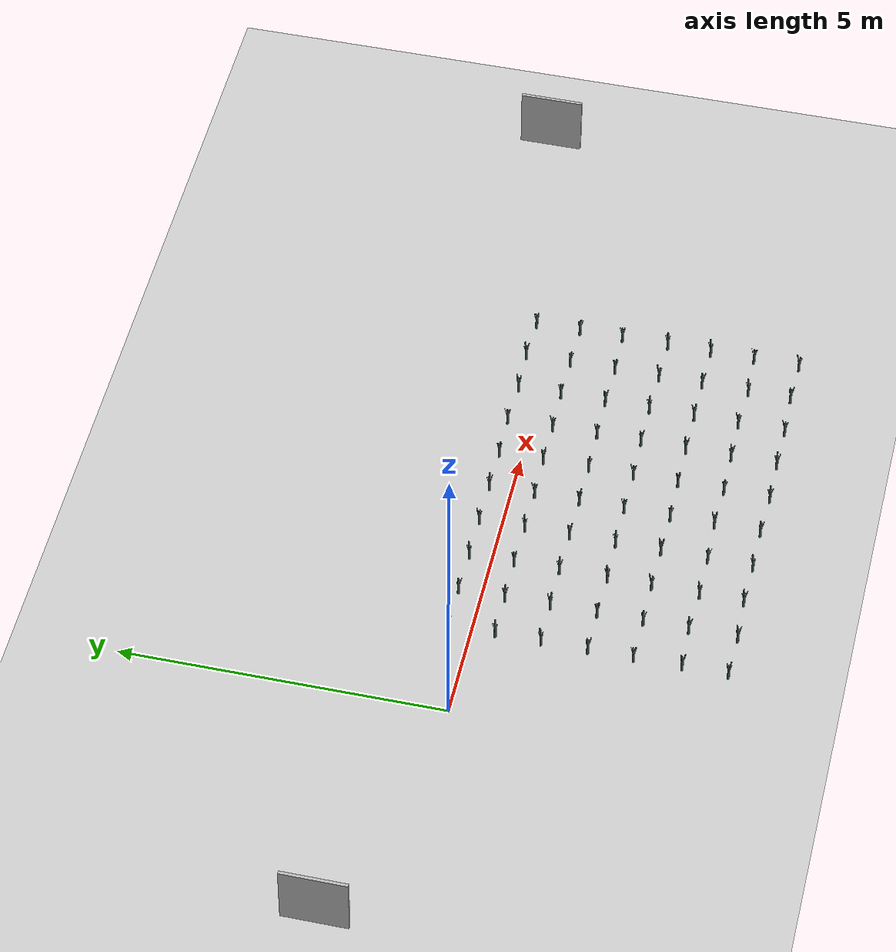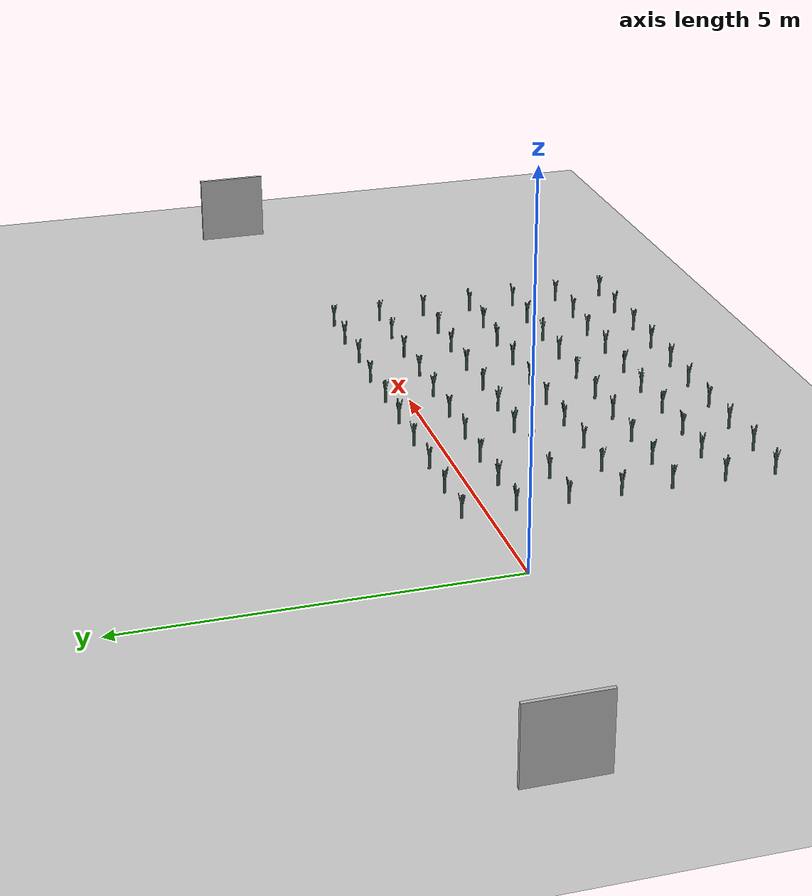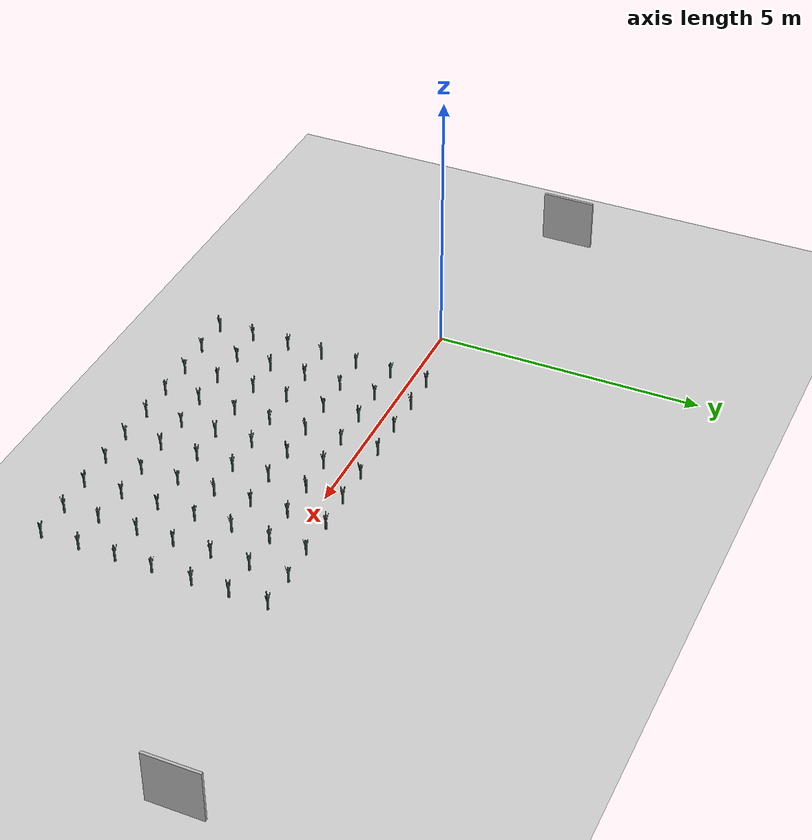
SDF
<sdf version="1.6">
 <world name="default">
  <light name="sun" type="directional">
   <pose>0 0 10 0 -0 0</pose>
   <diffuse>0.5 0.5 0.5 1</diffuse>
   <specular>0.1 0.1 0.1 1</specular>
   <attenuation>
    <range>1000</range>
    <constant>0.9</constant>
    <linear>0.01</linear>
    <quadratic>0.001</quadratic>
   </attenuation>
   <direction>0.9 0.5 -1</direction>
  </light>
  <scene><background>130 200 255 1</background><ambient>130 140 140 1</ambient></scene>
  <include><uri>model://Sign</uri><pose>12 1 0 0 0 0</pose><static>1</static></include>
  <include><uri>model://Sign</uri><pose>-4 1 0 0 0 0</pose><static>1</static></include>
  <include><uri>model://dirt_plane</uri></include>
  <include><uri>model://Leek</uri><pose>1.500000 0.346667 0.15 0 0 -29.996553</pose><static>0</static></include>
  <include><uri>model://Leek</uri><pose>2.200000 0.353866 0.15 0 0 34.795061</pose><static>0</static></include>
  <include><uri>model://Leek</uri><pose>2.900000 0.341680 0.15 0 0 -74.881479</pose><static>0</static></include>
  <include><uri>model://Leek</uri><pose>3.600000 0.345964 0.15 0 0 -36.327845</pose><static>0</static></include>
  <include><uri>model://Leek</uri><pose>4.300000 0.345643 0.15 0 0 -39.211560</pose><static>0</static></include>
  <include><uri>model://Leek</uri><pose>5.000000 0.341913 0.15 0 0 -72.785552</pose><static>0</static></include>
  <include><uri>model://Leek</uri><pose>5.700000 0.363482 0.15 0 0 121.341518</pose><static>0</static></include>
  <include><uri>model://Leek</uri><pose>6.400000 0.340135 0.15 0 0 -88.782150</pose><static>0</static></include>
  <include><uri>model://Leek</uri><pose>7.100000 0.367344 0.15 0 0 156.096107</pose><static>0</static></include>
  <include><uri>model://Leek</uri><pose>7.800000 0.348856 0.15 0 0 -10.294785</pose><static>0</static></include>
  <include>
   <uri>model://Leek</uri>
   <pose>1.500000 -0.360447 0.15 0 0 -94.024869</pose>
   <static>0</static>
  </include>
  <include>
   <uri>model://Leek</uri>
   <pose>2.200000 -0.355060 0.15 0 0 -45.544244</pose>
   <static>0</static>
  </include>
  <include><uri>model://Leek</uri><pose>2.900000 -0.344861 0.15 0 0 46.253890</pose><static>0</static></include>
  <include>
   <uri>model://Leek</uri>
   <pose>3.600000 -0.359029 0.15 0 0 -81.259588</pose>
   <static>0</static>
  </include>
  <include>
   <uri>model://Leek</uri>
   <pose>4.300000 -0.358870 0.15 0 0 -79.828347</pose>
   <static>0</static>
  </include>
  <include><uri>model://Leek</uri><pose>5.000000 -0.346761 0.15 0 0 29.152229</pose><static>0</static></include>
  <include><uri>model://Leek</uri><pose>5.700000 -0.350514 0.15 0 0 -4.628027</pose><static>0</static></include>
  <include>
   <uri>model://Leek</uri>
   <pose>6.400000 -0.330927 0.15 0 0 171.658200</pose>
   <static>0</static>
  </include>
  <include><uri>model://Leek</uri><pose>7.100000 -0.340615 0.15 0 0 84.464187</pose><static>0</static></include>
  <include><uri>model://Leek</uri><pose>7.800000 -0.348991 0.15 0 0 9.082416</pose><static>0</static></include>
  <include><uri>model://Leek</uri><pose>1.500000 -1.050625 0.15 0 0 -5.626382</pose><static>0</static></include>
  <include><uri>model://Leek</uri><pose>2.200000 -1.044436 0.15 0 0 50.078762</pose><static>0</static></include>
  <include>
   <uri>model://Leek</uri>
   <pose>2.900000 -1.034110 0.15 0 0 143.010047</pose>
   <static>0</static>
  </include>
  <include><uri>model://Leek</uri><pose>3.600000 -1.045366 0.15 0 0 41.703863</pose><static>0</static></include>
  <include>
   <uri>model://Leek</uri>
   <pose>4.300000 -1.052316 0.15 0 0 -20.843628</pose>
   <static>0</static>
  </include>
  <include>
   <uri>model://Leek</uri>
   <pose>5.000000 -1.059450 0.15 0 0 -85.049398</pose>
   <static>0</static>
  </include>
  <include><uri>model://Leek</uri><pose>5.700000 -1.044925 0.15 0 0 45.670862</pose><static>0</static></include>
  <include>
   <uri>model://Leek</uri>
   <pose>6.400000 -1.035618 0.15 0 0 129.439735</pose>
   <static>0</static>
  </include>
  <include>
   <uri>model://Leek</uri>
   <pose>7.100000 -1.053209 0.15 0 0 -28.877992</pose>
   <static>0</static>
  </include>
  <include>
   <uri>model://Leek</uri>
   <pose>7.800000 -1.031625 0.15 0 0 165.373029</pose>
   <static>0</static>
  </include>
  <include><uri>model://Leek</uri><pose>1.500000 -1.750993 0.15 0 0 -8.938785</pose><static>0</static></include>
  <include><uri>model://Leek</uri><pose>2.200000 -1.749719 0.15 0 0 2.529445</pose><static>0</static></include>
  <include>
   <uri>model://Leek</uri>
   <pose>2.900000 -1.768092 0.15 0 0 -162.828545</pose>
   <static>0</static>
  </include>
  <include>
   <uri>model://Leek</uri>
   <pose>3.600000 -1.752075 0.15 0 0 -18.679089</pose>
   <static>0</static>
  </include>
  <include><uri>model://Leek</uri><pose>4.300000 -1.744901 0.15 0 0 45.889174</pose><static>0</static></include>
  <include>
   <uri>model://Leek</uri>
   <pose>5.000000 -1.753289 0.15 0 0 -29.602505</pose>
   <static>0</static>
  </include>
  <include>
   <uri>model://Leek</uri>
   <pose>5.700000 -1.734922 0.15 0 0 135.699305</pose>
   <static>0</static>
  </include>
  <include>
   <uri>model://Leek</uri>
   <pose>6.400000 -1.732531 0.15 0 0 157.219993</pose>
   <static>0</static>
  </include>
  <include>
   <uri>model://Leek</uri>
   <pose>7.100000 -1.752683 0.15 0 0 -24.145392</pose>
   <static>0</static>
  </include>
  <include>
   <uri>model://Leek</uri>
   <pose>7.800000 -1.760434 0.15 0 0 -93.906207</pose>
   <static>0</static>
  </include>
  <include>
   <uri>model://Leek</uri>
   <pose>1.500000 -2.436489 0.15 0 0 121.603086</pose>
   <static>0</static>
  </include>
  <include><uri>model://Leek</uri><pose>2.200000 -2.444754 0.15 0 0 47.212124</pose><static>0</static></include>
  <include>
   <uri>model://Leek</uri>
   <pose>2.900000 -2.437293 0.15 0 0 114.360032</pose>
   <static>0</static>
  </include>
  <include><uri>model://Leek</uri><pose>3.600000 -2.445905 0.15 0 0 36.851160</pose><static>0</static></include>
  <include>
   <uri>model://Leek</uri>
   <pose>4.300000 -2.456660 0.15 0 0 -59.943333</pose>
   <static>0</static>
  </include>
  <include><uri>model://Leek</uri><pose>5.000000 -2.444145 0.15 0 0 52.697543</pose><static>0</static></include>
  <include>
   <uri>model://Leek</uri>
   <pose>5.700000 -2.436860 0.15 0 0 118.262927</pose>
   <static>0</static>
  </include>
  <include>
   <uri>model://Leek</uri>
   <pose>6.400000 -2.438167 0.15 0 0 106.494856</pose>
   <static>0</static>
  </include>
  <include>
   <uri>model://Leek</uri>
   <pose>7.100000 -2.435665 0.15 0 0 129.017848</pose>
   <static>0</static>
  </include>
  <include><uri>model://Leek</uri><pose>7.800000 -2.446447 0.15 0 0 31.974691</pose><static>0</static></include>
  <include>
   <uri>model://Leek</uri>
   <pose>1.500000 -3.160745 0.15 0 0 -96.704526</pose>
   <static>0</static>
  </include>
  <include>
   <uri>model://Leek</uri>
   <pose>2.200000 -3.130602 0.15 0 0 174.580704</pose>
   <static>0</static>
  </include>
  <include>
   <uri>model://Leek</uri>
   <pose>2.900000 -3.163184 0.15 0 0 -118.658586</pose>
   <static>0</static>
  </include>
  <include>
   <uri>model://Leek</uri>
   <pose>3.600000 -3.159436 0.15 0 0 -84.926954</pose>
   <static>0</static>
  </include>
  <include>
   <uri>model://Leek</uri>
   <pose>4.300000 -3.135399 0.15 0 0 131.407729</pose>
   <static>0</static>
  </include>
  <include>
   <uri>model://Leek</uri>
   <pose>5.000000 -3.155953 0.15 0 0 -53.574229</pose>
   <static>0</static>
  </include>
  <include><uri>model://Leek</uri><pose>5.700000 -3.143847 0.15 0 0 55.372744</pose><static>0</static></include>
  <include>
   <uri>model://Leek</uri>
   <pose>6.400000 -3.130994 0.15 0 0 171.053207</pose>
   <static>0</static>
  </include>
  <include>
   <uri>model://Leek</uri>
   <pose>7.100000 -3.165995 0.15 0 0 -143.956014</pose>
   <static>0</static>
  </include>
  <include>
   <uri>model://Leek</uri>
   <pose>7.800000 -3.135127 0.15 0 0 133.859935</pose>
   <static>0</static>
  </include>
  <include><uri>model://Leek</uri><pose>1.500000 -3.850241 0.15 0 0 -2.166143</pose><static>0</static></include>
  <include>
   <uri>model://Leek</uri>
   <pose>2.200000 -3.864080 0.15 0 0 -126.716574</pose>
   <static>0</static>
  </include>
  <include>
   <uri>model://Leek</uri>
   <pose>2.900000 -3.831987 0.15 0 0 162.114663</pose>
   <static>0</static>
  </include>
  <include><uri>model://Leek</uri><pose>3.600000 -3.846446 0.15 0 0 31.985608</pose><static>0</static></include>
  <include><uri>model://Leek</uri><pose>4.300000 -3.839850 0.15 0 0 91.349865</pose><static>0</static></include>
  <include>
   <uri>model://Leek</uri>
   <pose>5.000000 -3.864131 0.15 0 0 -127.174901</pose>
   <static>0</static>
  </include>
  <include>
   <uri>model://Leek</uri>
   <pose>5.700000 -3.852248 0.15 0 0 -20.228300</pose>
   <static>0</static>
  </include>
  <include>
   <uri>model://Leek</uri>
   <pose>6.400000 -3.857509 0.15 0 0 -67.580901</pose>
   <static>0</static>
  </include>
  <include>
   <uri>model://Leek</uri>
   <pose>7.100000 -3.830749 0.15 0 0 173.256150</pose>
   <static>0</static>
  </include>
  <include><uri>model://Leek</uri><pose>7.800000 -3.848476 0.15 0 0 13.716735</pose><static>0</static></include>
 </world>
</sdf>

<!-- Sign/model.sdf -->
<sdf version='1.6'>
  <model name='Sign'>
    <link name='link'>
      <pose frame=''>0 0 0 0 -0 0</pose>
      <inertial>
        <mass>1</mass>
        <inertia>
          <ixx>0.166667</ixx>
          <ixy>0</ixy>
          <ixz>0</ixz>
          <iyy>0.166667</iyy>
          <iyz>0</iyz>
          <izz>0.166667</izz>
        </inertia>
        <pose frame=''>0 0 0 0 -0 0</pose>
      </inertial>
      <self_collide>0</self_collide>
      <kinematic>0</kinematic>
      <gravity>1</gravity>
      <visual name='visual'>
        <geometry>
          <box>
            <size>1 0.05 1</size>
          </box>
        </geometry>
        <material>
          <script>
            <uri>model://ground_plane/materials/scripts/my_ground_plane.material</uri>
            <uri>model://ground_plane/materials/textures</uri>
            <name>my_ground_plane/NaioLogo</name>
          </script>
        </material>
        <pose frame=''>0 0 0.5 0 -0 1.57</pose>
        <cast_shadows>1</cast_shadows>
        <transparency>0</transparency>
      </visual>
    </link>
    <static>1</static>
    <allow_auto_disable>1</allow_auto_disable>
  </model>
</sdf>

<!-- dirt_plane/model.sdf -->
<sdf version="1.4">
<model name="dirt_plane">
  <static>true</static>
    <link name="link">
      <collision name="collision">
        <geometry>
          <plane>
            <normal>0 0 1</normal>
            <size>100 100</size>
          </plane>
        </geometry>
        <surface>
          <friction>
            <ode>
              <mu>0.99</mu>
              <mu2>0.99</mu2>
            </ode>
          </friction>
        </surface>
      </collision>
      <visual name="visual">
        <cast_shadows>false</cast_shadows>
        <geometry>
          <plane>
            <normal>0 0 1</normal>
            <size>100 100</size>
          </plane>
        </geometry>
        <material>
          <script>
            <uri>model://ground_plane/materials/scripts/my_ground_plane.material</uri>
            <uri>model://ground_plane/materials/textures</uri>
            <name>my_ground_plane/Dirt</name>
          </script>
        </material>
      </visual>
    </link>
  </model>
</sdf>

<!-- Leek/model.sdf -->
<sdf version='1.6'>
  <model name='Leek'>
    <link name='link'>
      <pose frame=''>0 0 0 0 -0 0</pose>
      <inertial>
        <mass>1</mass>
        <inertia>
          <ixx>0.145833</ixx>
          <ixy>0</ixy>
          <ixz>0</ixz>
          <iyy>0.145833</iyy>
          <iyz>0</iyz>
          <izz>0.125</izz>
        </inertia>
        <pose frame=''>0 0 0 0 -0 0</pose>
      </inertial>
      <self_collide>0</self_collide>
      <kinematic>0</kinematic>
      <gravity>1</gravity>
      <visual name='visual'>
        <geometry>
          <mesh>
            <uri>model://Leek/Poireau.dae</uri>
            <scale>1 1 1</scale>
          </mesh>
        </geometry>
        <material>
          <script>
            <name>Gazebo/Grey</name>
            <uri>file://media/materials/scripts/gazebo.material</uri>
          </script>
          <ambient>0.3 0.6 0.5 0</ambient>
          <diffuse>0.2 0.3 0.25 0</diffuse>
          <specular>0 0 0 1</specular>
          <emissive>0 0 0 1</emissive>
          <shader type='vertex'>
            <normal_map>__default__</normal_map>
          </shader>
        </material>
        <pose frame=''>0 0 -0.08 0 -0 0</pose>
        <cast_shadows>1</cast_shadows>
        <transparency>0</transparency>
      </visual>
      <collision name='collision'>
        <laser_retro>0</laser_retro>
        <max_contacts>10</max_contacts>
        <pose frame=''>0 0 0 0 -0 0</pose>
        <geometry>
          <cylinder>
            <radius>0.02</radius>
            <length>0.25</length>
          </cylinder>
        </geometry>
        <surface>
          <friction>
            <ode>
              <mu>1</mu>
              <mu2>1</mu2>
              <fdir1>0 0 0</fdir1>
              <slip1>0</slip1>
              <slip2>0</slip2>
            </ode>
            <torsional>
              <coefficient>1</coefficient>
              <patch_radius>0</patch_radius>
              <surface_radius>0</surface_radius>
              <use_patch_radius>1</use_patch_radius>
              <ode>
                <slip>0</slip>
              </ode>
            </torsional>
          </friction>
          <bounce>
            <restitution_coefficient>0</restitution_coefficient>
            <threshold>1e+06</threshold>
          </bounce>
          <contact>
            <collide_without_contact>0</collide_without_contact>
            <collide_without_contact_bitmask>1</collide_without_contact_bitmask>
            <collide_bitmask>1</collide_bitmask>
            <ode>
              <soft_cfm>0</soft_cfm>
              <soft_erp>0.2</soft_erp>
              <kp>1e+13</kp>
              <kd>1</kd>
              <max_vel>0.01</max_vel>
              <min_depth>0</min_depth>
            </ode>
            <bullet>
              <split_impulse>1</split_impulse>
              <split_impulse_penetration_threshold>-0.01</split_impulse_penetration_threshold>
              <soft_cfm>0</soft_cfm>
              <soft_erp>0.2</soft_erp>
              <kp>1e+13</kp>
              <kd>1</kd>
            </bullet>
          </contact>
        </surface>
      </collision>
    </link>
    <static>0</static>
    <allow_auto_disable>1</allow_auto_disable>
  </model>
</sdf>
